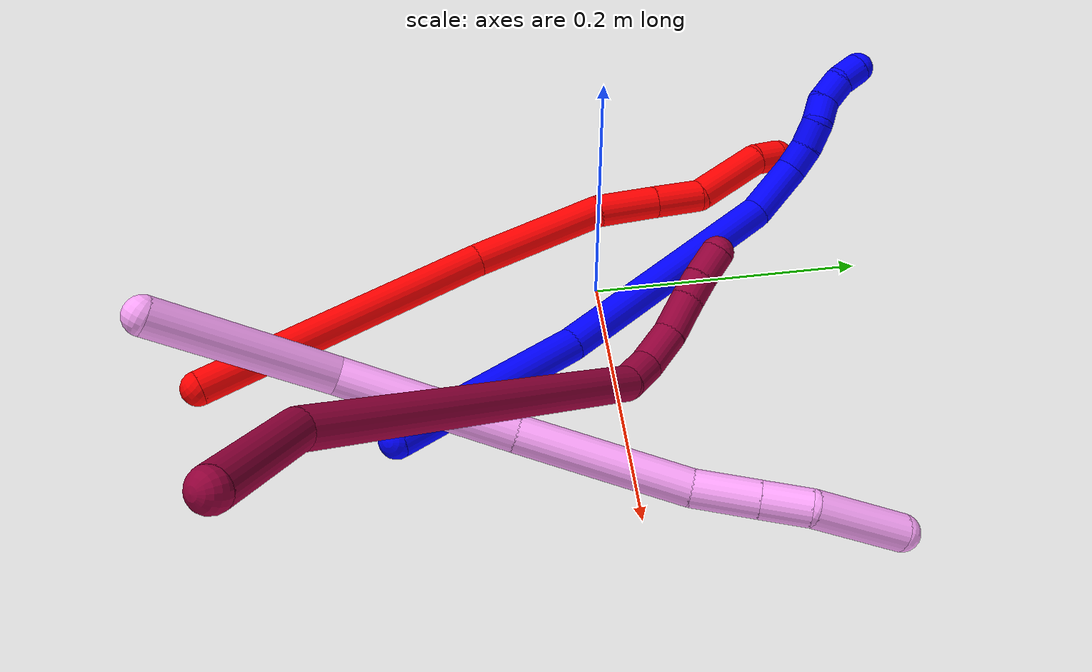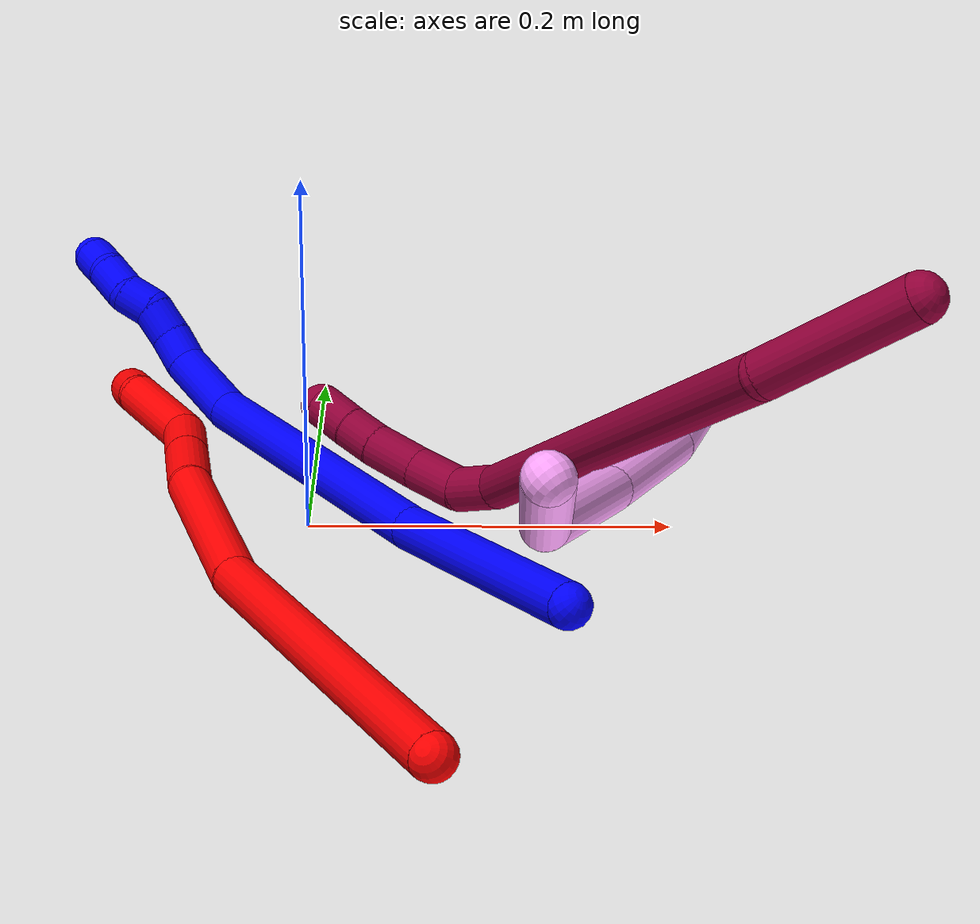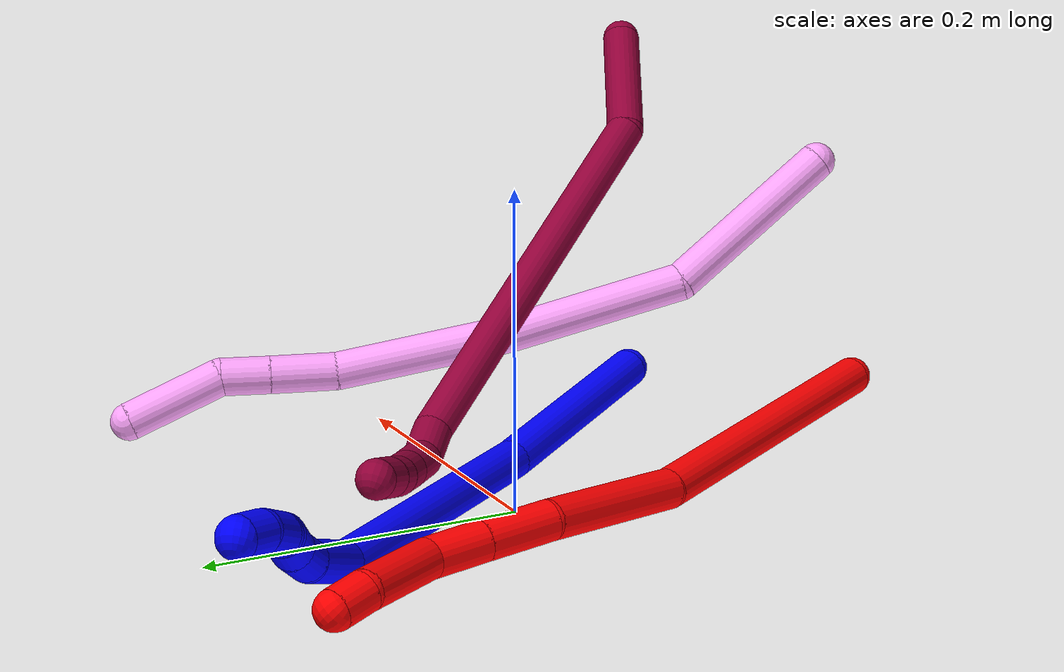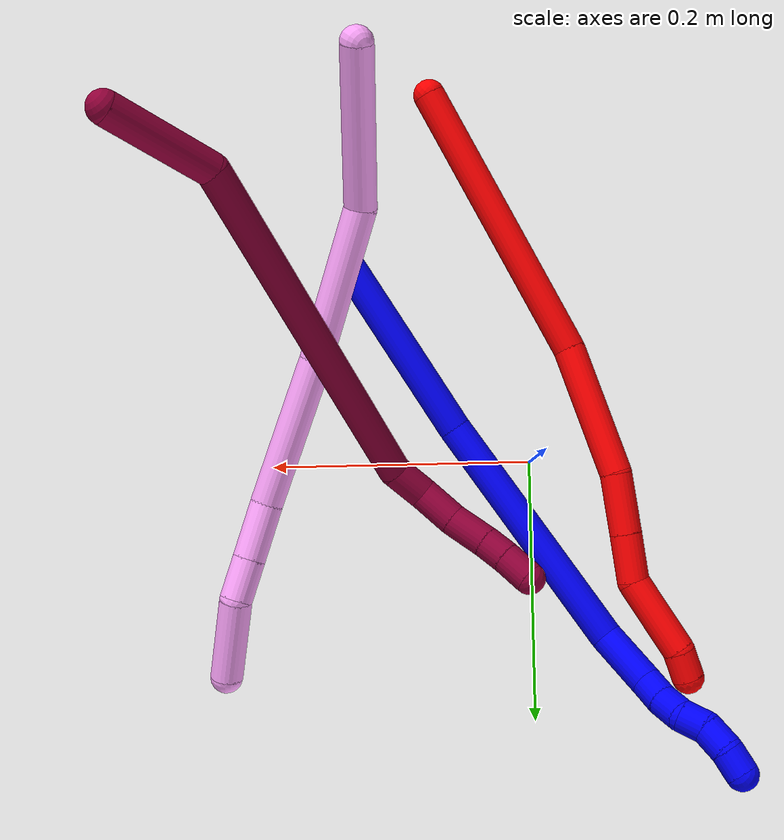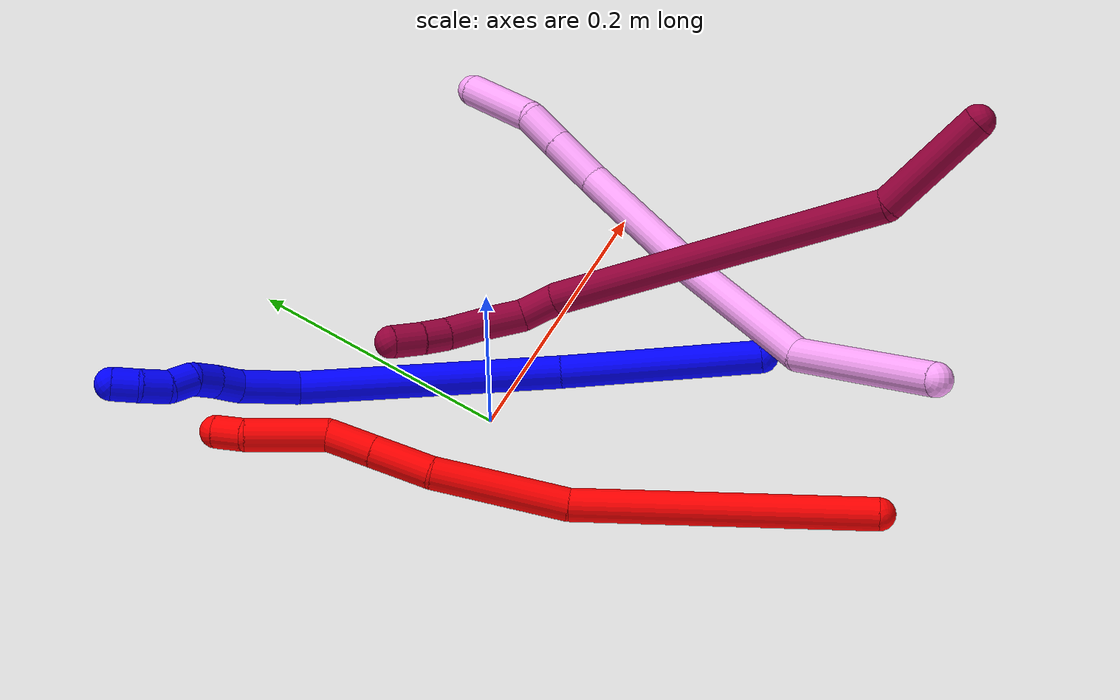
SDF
<sdf version="1.7">
 <world name="default">
  <model name="photoneo_s_sensor">
   <static>1</static>
   <pose>0 0 2 1.57079 1.57079 3.14159</pose>
   <link name="link">
    <inertial><mass>0.1</mass></inertial>
    <sensor name="sensor" type="depth">
     <update_rate>30</update_rate>
     <camera>
      <horizontal_fov>1.22</horizontal_fov>
      <image><width>1920</width><height>1200</height><format>B8G8R8</format></image>
      <clip><near>0.1</near><far>4</far></clip>
      <depth_camera><output>points</output></depth_camera>
     </camera>
     <plugin name="camera_plugin" filename="libgazebo_ros_depth_camera.so">
      <baseline>0.2</baseline>
      <alwaysOn>1</alwaysOn>
      <updateRate>0.0</updateRate>
      <cameraName>camera_ir</cameraName>
      <imageTopicName>/camera/color/image_raw</imageTopicName>
      <cameraInfoTopicName>/camera/color/camera_info</cameraInfoTopicName>
      <depthImageTopicName>/camera/depth/image_raw</depthImageTopicName>
      <depthImageCameraInfoTopicName>/camera/depth/camera_info</depthImageCameraInfoTopicName>
      <pointCloudTopicName>/camera/depth/points</pointCloudTopicName>
      <frameName>fr_optical</frameName>
      <pointCloudCutoff>0.1</pointCloudCutoff>
      <pointCloudCutoffMax>2.0</pointCloudCutoffMax>
      <distortionK1>0</distortionK1>
      <distortionK2>0</distortionK2>
      <distortionK3>0</distortionK3>
      <distortionT1>0</distortionT1>
      <distortionT2>0</distortionT2>
      <CxPrime>0</CxPrime>
      <Cx>0</Cx>
      <Cy>0</Cy>
      <focalLength>0</focalLength>
      <hackBaseline>0</hackBaseline>
     </plugin>
    </sensor>
   </link>
  </model>
  <model name="bin">
   <static>1</static>
   <link name="bottom">
    <collision name="collision-bottom">
     <pose>0 0 -0.01 0 -0 0</pose>
     <geometry><box><size>0.8 0.6 0.02</size></box></geometry>
     <surface>
      <friction><ode><mu>100</mu><mu2>100</mu2></ode></friction>
      <contact><collide_bitmask>65535</collide_bitmask></contact>
     </surface>
    </collision>
   </link>
   <link name="west_wall">
    <collision name="collision-west_wall">
     <pose>-0.41 0 0.1 0 -0 0</pose>
     <geometry><box><size>0.02 0.6 0.2</size></box></geometry>
     <surface>
      <friction><ode><mu>100</mu><mu2>100</mu2></ode></friction>
      <contact><collide_bitmask>65535</collide_bitmask></contact>
     </surface>
    </collision>
   </link>
   <link name="east_wall">
    <collision name="collision-east_wall">
     <pose>0.41 0 0.1 0 -0 0</pose>
     <geometry><box><size>0.02 0.6 0.2</size></box></geometry>
     <surface>
      <friction><ode><mu>100</mu><mu2>100</mu2></ode></friction>
      <contact><collide_bitmask>65535</collide_bitmask></contact>
     </surface>
    </collision>
   </link>
   <link name="south_wall">
    <collision name="collision-south_wall">
     <pose>0 -0.31 0.1 0 -0 0</pose>
     <geometry><box><size>0.8 0.02 0.2</size></box></geometry>
     <surface>
      <friction><ode><mu>100</mu><mu2>100</mu2></ode></friction>
      <contact><collide_bitmask>65535</collide_bitmask></contact>
     </surface>
    </collision>
   </link>
   <link name="north_wall">
    <collision name="collision-north_wall">
     <pose>0 0.31 0.1 0 -0 0</pose>
     <geometry><box><size>0.8 0.02 0.2</size></box></geometry>
     <surface>
      <friction><ode><mu>100</mu><mu2>100</mu2></ode></friction>
      <contact><collide_bitmask>65535</collide_bitmask></contact>
     </surface>
    </collision>
   </link>
  </model>
  <model name="1">
   <static>0</static>
   <link name="1">
    <collision name="collision-cylinder-e_1_1_4">
     <pose>-0.018305 0.046667 -0.056729 -2.4532 -0.244213 0.659672</pose>
     <geometry><cylinder><radius>0.0125</radius><length>0.151408</length></cylinder></geometry>
     <surface>
      <friction><ode><mu>1.16</mu><mu2>1.16</mu2><slip1>0</slip1><slip2>0</slip2></ode></friction>
      <contact><ode><kp>1e+06</kp><kd>1</kd><max_vel>0</max_vel><min_depth>0.001</min_depth></ode></contact>
     </surface>
    </collision>
    <visual name="visual-cylinder-e_1_1_4">
     <pose>-0.018305 0.046667 -0.056729 -2.4532 -0.244213 0.659672</pose>
     <geometry><cylinder><radius>0.0125</radius><length>0.151408</length></cylinder></geometry>
     <material><ambient>0 0 1 1</ambient></material>
    </visual>
    <collision name="collision-cylinder-e_2_4_5">
     <pose>-0.071039 0.157884 -0.180036 -2.37166 -0.35551 0.834674</pose>
     <geometry><cylinder><radius>0.0125</radius><length>0.197835</length></cylinder></geometry>
     <surface>
      <friction><ode><mu>1.16</mu><mu2>1.16</mu2><slip1>0</slip1><slip2>0</slip2></ode></friction>
      <contact><ode><kp>1e+06</kp><kd>1</kd><max_vel>0</max_vel><min_depth>0.001</min_depth></ode></contact>
     </surface>
    </collision>
    <visual name="visual-cylinder-e_2_4_5">
     <pose>-0.071039 0.157884 -0.180036 -2.37166 -0.35551 0.834674</pose>
     <geometry><cylinder><radius>0.0125</radius><length>0.197835</length></cylinder></geometry>
     <material><ambient>0 0 1 1</ambient></material>
    </visual>
    <collision name="collision-cylinder-e_3_5_6">
     <pose>-0.118831 0.239199 -0.255804 -2.07226 -0.609966 0.977188</pose>
     <geometry><cylinder><radius>0.0125</radius><length>0.046651</length></cylinder></geometry>
     <surface>
      <friction><ode><mu>1.16</mu><mu2>1.16</mu2><slip1>0</slip1><slip2>0</slip2></ode></friction>
      <contact><ode><kp>1e+06</kp><kd>1</kd><max_vel>0</max_vel><min_depth>0.001</min_depth></ode></contact>
     </surface>
    </collision>
    <visual name="visual-cylinder-e_3_5_6">
     <pose>-0.118831 0.239199 -0.255804 -2.07226 -0.609966 0.977188</pose>
     <geometry><cylinder><radius>0.0125</radius><length>0.046651</length></cylinder></geometry>
     <material><ambient>0 0 1 1</ambient></material>
    </visual>
    <collision name="collision-cylinder-e_4_6_7">
     <pose>-0.138747 0.26384 -0.266233 -1.72675 -0.688065 0.793581</pose>
     <geometry><cylinder><radius>0.0125</radius><length>0.020643</length></cylinder></geometry>
     <surface>
      <friction><ode><mu>1.16</mu><mu2>1.16</mu2><slip1>0</slip1><slip2>0</slip2></ode></friction>
      <contact><ode><kp>1e+06</kp><kd>1</kd><max_vel>0</max_vel><min_depth>0.001</min_depth></ode></contact>
     </surface>
    </collision>
    <visual name="visual-cylinder-e_4_6_7">
     <pose>-0.138747 0.26384 -0.266233 -1.72675 -0.688065 0.793581</pose>
     <geometry><cylinder><radius>0.0125</radius><length>0.020643</length></cylinder></geometry>
     <material><ambient>0 0 1 1</ambient></material>
    </visual>
    <collision name="collision-cylinder-e_5_7_8">
     <pose>-0.153283 0.278652 -0.267807 -1.61912 -0.854834 0.891884</pose>
     <geometry><cylinder><radius>0.0125</radius><length>0.021158</length></cylinder></geometry>
     <surface>
      <friction><ode><mu>1.16</mu><mu2>1.16</mu2><slip1>0</slip1><slip2>0</slip2></ode></friction>
      <contact><ode><kp>1e+06</kp><kd>1</kd><max_vel>0</max_vel><min_depth>0.001</min_depth></ode></contact>
     </surface>
    </collision>
    <visual name="visual-cylinder-e_5_7_8">
     <pose>-0.153283 0.278652 -0.267807 -1.61912 -0.854834 0.891884</pose>
     <geometry><cylinder><radius>0.0125</radius><length>0.021158</length></cylinder></geometry>
     <material><ambient>0 0 1 1</ambient></material>
    </visual>
    <collision name="collision-cylinder-e_6_8_9">
     <pose>-0.169573 0.289839 -0.271946 -2.30055 -0.969109 1.73316</pose>
     <geometry><cylinder><radius>0.0125</radius><length>0.020156</length></cylinder></geometry>
     <surface>
      <friction><ode><mu>1.16</mu><mu2>1.16</mu2><slip1>0</slip1><slip2>0</slip2></ode></friction>
      <contact><ode><kp>1e+06</kp><kd>1</kd><max_vel>0</max_vel><min_depth>0.001</min_depth></ode></contact>
     </surface>
    </collision>
    <visual name="visual-cylinder-e_6_8_9">
     <pose>-0.169573 0.289839 -0.271946 -2.30055 -0.969109 1.73316</pose>
     <geometry><cylinder><radius>0.0125</radius><length>0.020156</length></cylinder></geometry>
     <material><ambient>0 0 1 1</ambient></material>
    </visual>
    <collision name="collision-cylinder-e_7_9_10">
     <pose>-0.184426 0.302089 -0.279612 -2.02076 -0.635049 0.964873</pose>
     <geometry><cylinder><radius>0.0125</radius><length>0.022066</length></cylinder></geometry>
     <surface>
      <friction><ode><mu>1.16</mu><mu2>1.16</mu2><slip1>0</slip1><slip2>0</slip2></ode></friction>
      <contact><ode><kp>1e+06</kp><kd>1</kd><max_vel>0</max_vel><min_depth>0.001</min_depth></ode></contact>
     </surface>
    </collision>
    <visual name="visual-cylinder-e_7_9_10">
     <pose>-0.184426 0.302089 -0.279612 -2.02076 -0.635049 0.964873</pose>
     <geometry><cylinder><radius>0.0125</radius><length>0.022066</length></cylinder></geometry>
     <material><ambient>0 0 1 1</ambient></material>
    </visual>
    <collision name="collision-cylinder-e_8_10_2">
     <pose>-0.194677 0.317673 -0.28891 -2.19249 -0.378011 0.712924</pose>
     <geometry><cylinder><radius>0.0125</radius><length>0.020084</length></cylinder></geometry>
     <surface>
      <friction><ode><mu>1.16</mu><mu2>1.16</mu2><slip1>0</slip1><slip2>0</slip2></ode></friction>
      <contact><ode><kp>1e+06</kp><kd>1</kd><max_vel>0</max_vel><min_depth>0.001</min_depth></ode></contact>
     </surface>
    </collision>
    <visual name="visual-cylinder-e_8_10_2">
     <pose>-0.194677 0.317673 -0.28891 -2.19249 -0.378011 0.712924</pose>
     <geometry><cylinder><radius>0.0125</radius><length>0.020084</length></cylinder></geometry>
     <material><ambient>0 0 1 1</ambient></material>
    </visual>
    <collision name="collision-sphere-2">
     <pose>-0.198383 0.32526 -0.294346 0 -0 0</pose>
     <geometry><sphere><radius>0.0125</radius></sphere></geometry>
     <surface>
      <friction><ode><mu>1.16</mu><mu2>1.16</mu2><slip1>0</slip1><slip2>0</slip2></ode></friction>
      <contact><ode><kp>1e+06</kp><kd>1</kd><max_vel>0</max_vel><min_depth>0.001</min_depth></ode></contact>
     </surface>
    </collision>
    <visual name="visual-sphere-2">
     <pose>-0.198383 0.32526 -0.294346 0 -0 0</pose>
     <geometry><sphere><radius>0.0125</radius></sphere></geometry>
     <material><ambient>0 0 1 1</ambient></material>
    </visual>
    <collision name="collision-sphere-10">
     <pose>-0.190971 0.310087 -0.283475 0 -0 0</pose>
     <geometry><sphere><radius>0.0125</radius></sphere></geometry>
     <surface>
      <friction><ode><mu>1.16</mu><mu2>1.16</mu2><slip1>0</slip1><slip2>0</slip2></ode></friction>
      <contact><ode><kp>1e+06</kp><kd>1</kd><max_vel>0</max_vel><min_depth>0.001</min_depth></ode></contact>
     </surface>
    </collision>
    <visual name="visual-sphere-10">
     <pose>-0.190971 0.310087 -0.283475 0 -0 0</pose>
     <geometry><sphere><radius>0.0125</radius></sphere></geometry>
     <material><ambient>0 0 1 1</ambient></material>
    </visual>
    <collision name="collision-sphere-9">
     <pose>-0.177881 0.294091 -0.275749 0 -0 0</pose>
     <geometry><sphere><radius>0.0125</radius></sphere></geometry>
     <surface>
      <friction><ode><mu>1.16</mu><mu2>1.16</mu2><slip1>0</slip1><slip2>0</slip2></ode></friction>
      <contact><ode><kp>1e+06</kp><kd>1</kd><max_vel>0</max_vel><min_depth>0.001</min_depth></ode></contact>
     </surface>
    </collision>
    <visual name="visual-sphere-9">
     <pose>-0.177881 0.294091 -0.275749 0 -0 0</pose>
     <geometry><sphere><radius>0.0125</radius></sphere></geometry>
     <material><ambient>0 0 1 1</ambient></material>
    </visual>
    <collision name="collision-sphere-4">
     <pose>-0.036609 0.093334 -0.113458 0 -0 0</pose>
     <geometry><sphere><radius>0.0125</radius></sphere></geometry>
     <surface>
      <friction><ode><mu>1.16</mu><mu2>1.16</mu2><slip1>0</slip1><slip2>0</slip2></ode></friction>
      <contact><ode><kp>1e+06</kp><kd>1</kd><max_vel>0</max_vel><min_depth>0.001</min_depth></ode></contact>
     </surface>
    </collision>
    <visual name="visual-sphere-4">
     <pose>-0.036609 0.093334 -0.113458 0 -0 0</pose>
     <geometry><sphere><radius>0.0125</radius></sphere></geometry>
     <material><ambient>0 0 1 1</ambient></material>
    </visual>
    <collision name="collision-sphere-1">
     <geometry><sphere><radius>0.0125</radius></sphere></geometry>
     <surface>
      <friction><ode><mu>1.16</mu><mu2>1.16</mu2><slip1>0</slip1><slip2>0</slip2></ode></friction>
      <contact><ode><kp>1e+06</kp><kd>1</kd><max_vel>0</max_vel><min_depth>0.001</min_depth></ode></contact>
     </surface>
    </collision>
    <visual name="visual-sphere-1">
     <geometry><sphere><radius>0.0125</radius></sphere></geometry>
     <material><ambient>0 0 1 1</ambient></material>
    </visual>
    <collision name="collision-sphere-8">
     <pose>-0.161265 0.285587 -0.268143 0 -0 0</pose>
     <geometry><sphere><radius>0.0125</radius></sphere></geometry>
     <surface>
      <friction><ode><mu>1.16</mu><mu2>1.16</mu2><slip1>0</slip1><slip2>0</slip2></ode></friction>
      <contact><ode><kp>1e+06</kp><kd>1</kd><max_vel>0</max_vel><min_depth>0.001</min_depth></ode></contact>
     </surface>
    </collision>
    <visual name="visual-sphere-8">
     <pose>-0.161265 0.285587 -0.268143 0 -0 0</pose>
     <geometry><sphere><radius>0.0125</radius></sphere></geometry>
     <material><ambient>0 0 1 1</ambient></material>
    </visual>
    <collision name="collision-sphere-5">
     <pose>-0.105469 0.222434 -0.246614 0 -0 0</pose>
     <geometry><sphere><radius>0.0125</radius></sphere></geometry>
     <surface>
      <friction><ode><mu>1.16</mu><mu2>1.16</mu2><slip1>0</slip1><slip2>0</slip2></ode></friction>
      <contact><ode><kp>1e+06</kp><kd>1</kd><max_vel>0</max_vel><min_depth>0.001</min_depth></ode></contact>
     </surface>
    </collision>
    <visual name="visual-sphere-5">
     <pose>-0.105469 0.222434 -0.246614 0 -0 0</pose>
     <geometry><sphere><radius>0.0125</radius></sphere></geometry>
     <material><ambient>0 0 1 1</ambient></material>
    </visual>
    <collision name="collision-sphere-6">
     <pose>-0.132193 0.255964 -0.264995 0 -0 0</pose>
     <geometry><sphere><radius>0.0125</radius></sphere></geometry>
     <surface>
      <friction><ode><mu>1.16</mu><mu2>1.16</mu2><slip1>0</slip1><slip2>0</slip2></ode></friction>
      <contact><ode><kp>1e+06</kp><kd>1</kd><max_vel>0</max_vel><min_depth>0.001</min_depth></ode></contact>
     </surface>
    </collision>
    <visual name="visual-sphere-6">
     <pose>-0.132193 0.255964 -0.264995 0 -0 0</pose>
     <geometry><sphere><radius>0.0125</radius></sphere></geometry>
     <material><ambient>0 0 1 1</ambient></material>
    </visual>
    <collision name="collision-sphere-7">
     <pose>-0.145302 0.271716 -0.267472 0 -0 0</pose>
     <geometry><sphere><radius>0.0125</radius></sphere></geometry>
     <surface>
      <friction><ode><mu>1.16</mu><mu2>1.16</mu2><slip1>0</slip1><slip2>0</slip2></ode></friction>
      <contact><ode><kp>1e+06</kp><kd>1</kd><max_vel>0</max_vel><min_depth>0.001</min_depth></ode></contact>
     </surface>
    </collision>
    <visual name="visual-sphere-7">
     <pose>-0.145302 0.271716 -0.267472 0 -0 0</pose>
     <geometry><sphere><radius>0.0125</radius></sphere></geometry>
     <material><ambient>0 0 1 1</ambient></material>
    </visual>
    <inertial>
     <pose>-0.079747 0.159379 -0.169512 0 -0 0</pose>
     <mass>0.5</mass>
     <inertia>
      <ixx>0.00127</ixx>
      <ixy>0</ixy>
      <ixz>0</ixz>
      <iyy>0.00032</iyy>
      <iyz>0</iyz>
      <izz>-0.000334</izz>
     </inertia>
    </inertial>
   </link>
   <pose>0.137856 -0.154177 0.03082 0.561752 0.567998 0.182253</pose>
  </model>
  <model name="2">
   <static>0</static>
   <link name="2">
    <collision name="collision-cylinder-e_1_1_4">
     <pose>-0.050214 0.088475 -0.049893 -2.08426 -0.45913 0.761117</pose>
     <geometry><cylinder><radius>0.0125</radius><length>0.226615</length></cylinder></geometry>
     <surface>
      <friction><ode><mu>1.16</mu><mu2>1.16</mu2><slip1>0</slip1><slip2>0</slip2></ode></friction>
      <contact><ode><kp>1e+06</kp><kd>1</kd><max_vel>0</max_vel><min_depth>0.001</min_depth></ode></contact>
     </surface>
    </collision>
    <visual name="visual-cylinder-e_1_1_4">
     <pose>-0.050214 0.088475 -0.049893 -2.08426 -0.45913 0.761117</pose>
     <geometry><cylinder><radius>0.0125</radius><length>0.226615</length></cylinder></geometry>
     <material><ambient>1 0 0 1</ambient></material>
    </visual>
    <collision name="collision-cylinder-e_2_4_5">
     <pose>-0.113602 0.221537 -0.122796 -2.04722 -0.256749 0.41758</pose>
     <geometry><cylinder><radius>0.0125</radius><length>0.103749</length></cylinder></geometry>
     <surface>
      <friction><ode><mu>1.16</mu><mu2>1.16</mu2><slip1>0</slip1><slip2>0</slip2></ode></friction>
      <contact><ode><kp>1e+06</kp><kd>1</kd><max_vel>0</max_vel><min_depth>0.001</min_depth></ode></contact>
     </surface>
    </collision>
    <visual name="visual-cylinder-e_2_4_5">
     <pose>-0.113602 0.221537 -0.122796 -2.04722 -0.256749 0.41758</pose>
     <geometry><cylinder><radius>0.0125</radius><length>0.103749</length></cylinder></geometry>
     <material><ambient>1 0 0 1</ambient></material>
    </visual>
    <collision name="collision-cylinder-e_3_5_6">
     <pose>-0.130388 0.284228 -0.160364 -2.24803 -0.154285 0.319919</pose>
     <geometry><cylinder><radius>0.0125</radius><length>0.047022</length></cylinder></geometry>
     <surface>
      <friction><ode><mu>1.16</mu><mu2>1.16</mu2><slip1>0</slip1><slip2>0</slip2></ode></friction>
      <contact><ode><kp>1e+06</kp><kd>1</kd><max_vel>0</max_vel><min_depth>0.001</min_depth></ode></contact>
     </surface>
    </collision>
    <visual name="visual-cylinder-e_3_5_6">
     <pose>-0.130388 0.284228 -0.160364 -2.24803 -0.154285 0.319919</pose>
     <geometry><cylinder><radius>0.0125</radius><length>0.047022</length></cylinder></geometry>
     <material><ambient>1 0 0 1</ambient></material>
    </visual>
    <collision name="collision-cylinder-e_4_6_7">
     <pose>-0.13685 0.316576 -0.186668 -2.26044 -0.153138 0.322606</pose>
     <geometry><cylinder><radius>0.0125</radius><length>0.037361</length></cylinder></geometry>
     <surface>
      <friction><ode><mu>1.16</mu><mu2>1.16</mu2><slip1>0</slip1><slip2>0</slip2></ode></friction>
      <contact><ode><kp>1e+06</kp><kd>1</kd><max_vel>0</max_vel><min_depth>0.001</min_depth></ode></contact>
     </surface>
    </collision>
    <visual name="visual-cylinder-e_4_6_7">
     <pose>-0.13685 0.316576 -0.186668 -2.26044 -0.153138 0.322606</pose>
     <geometry><cylinder><radius>0.0125</radius><length>0.037361</length></cylinder></geometry>
     <material><ambient>1 0 0 1</ambient></material>
    </visual>
    <collision name="collision-cylinder-e_5_7_8">
     <pose>-0.15405 0.356534 -0.20882 -1.95529 -0.477394 0.692819</pose>
     <geometry><cylinder><radius>0.0125</radius><length>0.062466</length></cylinder></geometry>
     <surface>
      <friction><ode><mu>1.16</mu><mu2>1.16</mu2><slip1>0</slip1><slip2>0</slip2></ode></friction>
      <contact><ode><kp>1e+06</kp><kd>1</kd><max_vel>0</max_vel><min_depth>0.001</min_depth></ode></contact>
     </surface>
    </collision>
    <visual name="visual-cylinder-e_5_7_8">
     <pose>-0.15405 0.356534 -0.20882 -1.95529 -0.477394 0.692819</pose>
     <geometry><cylinder><radius>0.0125</radius><length>0.062466</length></cylinder></geometry>
     <material><ambient>1 0 0 1</ambient></material>
    </visual>
    <collision name="collision-cylinder-e_6_8_2">
     <pose>-0.172651 0.390107 -0.226298 -2.30367 -0.382337 0.819918</pose>
     <geometry><cylinder><radius>0.0125</radius><length>0.022786</length></cylinder></geometry>
     <surface>
      <friction><ode><mu>1.16</mu><mu2>1.16</mu2><slip1>0</slip1><slip2>0</slip2></ode></friction>
      <contact><ode><kp>1e+06</kp><kd>1</kd><max_vel>0</max_vel><min_depth>0.001</min_depth></ode></contact>
     </surface>
    </collision>
    <visual name="visual-cylinder-e_6_8_2">
     <pose>-0.172651 0.390107 -0.226298 -2.30367 -0.382337 0.819918</pose>
     <geometry><cylinder><radius>0.0125</radius><length>0.022786</length></cylinder></geometry>
     <material><ambient>1 0 0 1</ambient></material>
    </visual>
    <collision name="collision-sphere-2">
     <pose>-0.176902 0.397963 -0.233369 0 -0 0</pose>
     <geometry><sphere><radius>0.0125</radius></sphere></geometry>
     <surface>
      <friction><ode><mu>1.16</mu><mu2>1.16</mu2><slip1>0</slip1><slip2>0</slip2></ode></friction>
      <contact><ode><kp>1e+06</kp><kd>1</kd><max_vel>0</max_vel><min_depth>0.001</min_depth></ode></contact>
     </surface>
    </collision>
    <visual name="visual-sphere-2">
     <pose>-0.176902 0.397963 -0.233369 0 -0 0</pose>
     <geometry><sphere><radius>0.0125</radius></sphere></geometry>
     <material><ambient>1 0 0 1</ambient></material>
    </visual>
    <collision name="collision-sphere-4">
     <pose>-0.100429 0.17695 -0.099786 0 -0 0</pose>
     <geometry><sphere><radius>0.0125</radius></sphere></geometry>
     <surface>
      <friction><ode><mu>1.16</mu><mu2>1.16</mu2><slip1>0</slip1><slip2>0</slip2></ode></friction>
      <contact><ode><kp>1e+06</kp><kd>1</kd><max_vel>0</max_vel><min_depth>0.001</min_depth></ode></contact>
     </surface>
    </collision>
    <visual name="visual-sphere-4">
     <pose>-0.100429 0.17695 -0.099786 0 -0 0</pose>
     <geometry><sphere><radius>0.0125</radius></sphere></geometry>
     <material><ambient>1 0 0 1</ambient></material>
    </visual>
    <collision name="collision-sphere-1">
     <geometry><sphere><radius>0.0125</radius></sphere></geometry>
     <surface>
      <friction><ode><mu>1.16</mu><mu2>1.16</mu2><slip1>0</slip1><slip2>0</slip2></ode></friction>
      <contact><ode><kp>1e+06</kp><kd>1</kd><max_vel>0</max_vel><min_depth>0.001</min_depth></ode></contact>
     </surface>
    </collision>
    <visual name="visual-sphere-1">
     <geometry><sphere><radius>0.0125</radius></sphere></geometry>
     <material><ambient>1 0 0 1</ambient></material>
    </visual>
    <collision name="collision-sphere-8">
     <pose>-0.168401 0.38225 -0.219226 0 -0 0</pose>
     <geometry><sphere><radius>0.0125</radius></sphere></geometry>
     <surface>
      <friction><ode><mu>1.16</mu><mu2>1.16</mu2><slip1>0</slip1><slip2>0</slip2></ode></friction>
      <contact><ode><kp>1e+06</kp><kd>1</kd><max_vel>0</max_vel><min_depth>0.001</min_depth></ode></contact>
     </surface>
    </collision>
    <visual name="visual-sphere-8">
     <pose>-0.168401 0.38225 -0.219226 0 -0 0</pose>
     <geometry><sphere><radius>0.0125</radius></sphere></geometry>
     <material><ambient>1 0 0 1</ambient></material>
    </visual>
    <collision name="collision-sphere-5">
     <pose>-0.126774 0.266123 -0.145806 0 -0 0</pose>
     <geometry><sphere><radius>0.0125</radius></sphere></geometry>
     <surface>
      <friction><ode><mu>1.16</mu><mu2>1.16</mu2><slip1>0</slip1><slip2>0</slip2></ode></friction>
      <contact><ode><kp>1e+06</kp><kd>1</kd><max_vel>0</max_vel><min_depth>0.001</min_depth></ode></contact>
     </surface>
    </collision>
    <visual name="visual-sphere-5">
     <pose>-0.126774 0.266123 -0.145806 0 -0 0</pose>
     <geometry><sphere><radius>0.0125</radius></sphere></geometry>
     <material><ambient>1 0 0 1</ambient></material>
    </visual>
    <collision name="collision-sphere-6">
     <pose>-0.134001 0.302333 -0.174922 0 -0 0</pose>
     <geometry><sphere><radius>0.0125</radius></sphere></geometry>
     <surface>
      <friction><ode><mu>1.16</mu><mu2>1.16</mu2><slip1>0</slip1><slip2>0</slip2></ode></friction>
      <contact><ode><kp>1e+06</kp><kd>1</kd><max_vel>0</max_vel><min_depth>0.001</min_depth></ode></contact>
     </surface>
    </collision>
    <visual name="visual-sphere-6">
     <pose>-0.134001 0.302333 -0.174922 0 -0 0</pose>
     <geometry><sphere><radius>0.0125</radius></sphere></geometry>
     <material><ambient>1 0 0 1</ambient></material>
    </visual>
    <collision name="collision-sphere-7">
     <pose>-0.1397 0.330819 -0.198415 0 -0 0</pose>
     <geometry><sphere><radius>0.0125</radius></sphere></geometry>
     <surface>
      <friction><ode><mu>1.16</mu><mu2>1.16</mu2><slip1>0</slip1><slip2>0</slip2></ode></friction>
      <contact><ode><kp>1e+06</kp><kd>1</kd><max_vel>0</max_vel><min_depth>0.001</min_depth></ode></contact>
     </surface>
    </collision>
    <visual name="visual-sphere-7">
     <pose>-0.1397 0.330819 -0.198415 0 -0 0</pose>
     <geometry><sphere><radius>0.0125</radius></sphere></geometry>
     <material><ambient>1 0 0 1</ambient></material>
    </visual>
    <inertial>
     <pose>-0.095933 0.198774 -0.113524 0 -0 0</pose>
     <mass>0.5</mass>
     <inertia>
      <ixx>0.001402</ixx>
      <ixy>0</ixy>
      <ixz>0</ixz>
      <iyy>0.000564</iyy>
      <iyz>0</iyz>
      <izz>-0.000426</izz>
     </inertia>
    </inertial>
   </link>
   <pose>0.072447 -0.287838 0.024132 0.692672 -0.464698 -0.003874</pose>
  </model>
  <model name="4">
   <static>0</static>
   <link name="4">
    <collision name="collision-cylinder-e_1_1_4">
     <pose>0.040761 0.046258 -0.007584 -1.73329 0.71575 -0.829485</pose>
     <geometry><cylinder><radius>0.0125</radius><length>0.124238</length></cylinder></geometry>
     <surface>
      <friction><ode><mu>1.16</mu><mu2>1.16</mu2><slip1>0</slip1><slip2>0</slip2></ode></friction>
      <contact><ode><kp>1e+06</kp><kd>1</kd><max_vel>0</max_vel><min_depth>0.001</min_depth></ode></contact>
     </surface>
    </collision>
    <visual name="visual-cylinder-e_1_1_4">
     <pose>0.040761 0.046258 -0.007584 -1.73329 0.71575 -0.829485</pose>
     <geometry><cylinder><radius>0.0125</radius><length>0.124238</length></cylinder></geometry>
     <material><ambient>1 0.65098 0.996078 1</ambient></material>
    </visual>
    <collision name="collision-cylinder-e_2_4_5">
     <pose>0.097759 0.148621 -0.026208 -1.7651 0.276652 -0.335381</pose>
     <geometry><cylinder><radius>0.0125</radius><length>0.118885</length></cylinder></geometry>
     <surface>
      <friction><ode><mu>1.16</mu><mu2>1.16</mu2><slip1>0</slip1><slip2>0</slip2></ode></friction>
      <contact><ode><kp>1e+06</kp><kd>1</kd><max_vel>0</max_vel><min_depth>0.001</min_depth></ode></contact>
     </surface>
    </collision>
    <visual name="visual-cylinder-e_2_4_5">
     <pose>0.097759 0.148621 -0.026208 -1.7651 0.276652 -0.335381</pose>
     <geometry><cylinder><radius>0.0125</radius><length>0.118885</length></cylinder></geometry>
     <material><ambient>1 0.65098 0.996078 1</ambient></material>
    </visual>
    <collision name="collision-cylinder-e_3_5_6">
     <pose>0.125207 0.260137 -0.049131 -1.78203 0.195333 -0.241254</pose>
     <geometry><cylinder><radius>0.0125</radius><length>0.115534</length></cylinder></geometry>
     <surface>
      <friction><ode><mu>1.16</mu><mu2>1.16</mu2><slip1>0</slip1><slip2>0</slip2></ode></friction>
      <contact><ode><kp>1e+06</kp><kd>1</kd><max_vel>0</max_vel><min_depth>0.001</min_depth></ode></contact>
     </surface>
    </collision>
    <visual name="visual-cylinder-e_3_5_6">
     <pose>0.125207 0.260137 -0.049131 -1.78203 0.195333 -0.241254</pose>
     <geometry><cylinder><radius>0.0125</radius><length>0.115534</length></cylinder></geometry>
     <material><ambient>1 0.65098 0.996078 1</ambient></material>
    </visual>
    <collision name="collision-cylinder-e_4_6_7">
     <pose>0.138137 0.335967 -0.068581 -1.92572 0.078718 -0.113062</pose>
     <geometry><cylinder><radius>0.0125</radius><length>0.043692</length></cylinder></geometry>
     <surface>
      <friction><ode><mu>1.16</mu><mu2>1.16</mu2><slip1>0</slip1><slip2>0</slip2></ode></friction>
      <contact><ode><kp>1e+06</kp><kd>1</kd><max_vel>0</max_vel><min_depth>0.001</min_depth></ode></contact>
     </surface>
    </collision>
    <visual name="visual-cylinder-e_4_6_7">
     <pose>0.138137 0.335967 -0.068581 -1.92572 0.078718 -0.113062</pose>
     <geometry><cylinder><radius>0.0125</radius><length>0.043692</length></cylinder></geometry>
     <material><ambient>1 0.65098 0.996078 1</ambient></material>
    </visual>
    <collision name="collision-cylinder-e_5_7_8">
     <pose>0.140957 0.371517 -0.081838 -1.93043 0.068076 -0.098283</pose>
     <geometry><cylinder><radius>0.0125</radius><length>0.032402</length></cylinder></geometry>
     <surface>
      <friction><ode><mu>1.16</mu><mu2>1.16</mu2><slip1>0</slip1><slip2>0</slip2></ode></friction>
      <contact><ode><kp>1e+06</kp><kd>1</kd><max_vel>0</max_vel><min_depth>0.001</min_depth></ode></contact>
     </surface>
    </collision>
    <visual name="visual-cylinder-e_5_7_8">
     <pose>0.140957 0.371517 -0.081838 -1.93043 0.068076 -0.098283</pose>
     <geometry><cylinder><radius>0.0125</radius><length>0.032402</length></cylinder></geometry>
     <material><ambient>1 0.65098 0.996078 1</ambient></material>
    </visual>
    <collision name="collision-cylinder-e_6_8_2">
     <pose>0.156572 0.41511 -0.094124 -1.79857 0.461023 -0.574287</pose>
     <geometry><cylinder><radius>0.0125</radius><length>0.065248</length></cylinder></geometry>
     <surface>
      <friction><ode><mu>1.16</mu><mu2>1.16</mu2><slip1>0</slip1><slip2>0</slip2></ode></friction>
      <contact><ode><kp>1e+06</kp><kd>1</kd><max_vel>0</max_vel><min_depth>0.001</min_depth></ode></contact>
     </surface>
    </collision>
    <visual name="visual-cylinder-e_6_8_2">
     <pose>0.156572 0.41511 -0.094124 -1.79857 0.461023 -0.574287</pose>
     <geometry><cylinder><radius>0.0125</radius><length>0.065248</length></cylinder></geometry>
     <material><ambient>1 0.65098 0.996078 1</ambient></material>
    </visual>
    <collision name="collision-sphere-2">
     <pose>0.171086 0.443574 -0.100722 0 -0 0</pose>
     <geometry><sphere><radius>0.0125</radius></sphere></geometry>
     <surface>
      <friction><ode><mu>1.16</mu><mu2>1.16</mu2><slip1>0</slip1><slip2>0</slip2></ode></friction>
      <contact><ode><kp>1e+06</kp><kd>1</kd><max_vel>0</max_vel><min_depth>0.001</min_depth></ode></contact>
     </surface>
    </collision>
    <visual name="visual-sphere-2">
     <pose>0.171086 0.443574 -0.100722 0 -0 0</pose>
     <geometry><sphere><radius>0.0125</radius></sphere></geometry>
     <material><ambient>1 0.65098 0.996078 1</ambient></material>
    </visual>
    <collision name="collision-sphere-4">
     <pose>0.081523 0.092515 -0.015167 0 -0 0</pose>
     <geometry><sphere><radius>0.0125</radius></sphere></geometry>
     <surface>
      <friction><ode><mu>1.16</mu><mu2>1.16</mu2><slip1>0</slip1><slip2>0</slip2></ode></friction>
      <contact><ode><kp>1e+06</kp><kd>1</kd><max_vel>0</max_vel><min_depth>0.001</min_depth></ode></contact>
     </surface>
    </collision>
    <visual name="visual-sphere-4">
     <pose>0.081523 0.092515 -0.015167 0 -0 0</pose>
     <geometry><sphere><radius>0.0125</radius></sphere></geometry>
     <material><ambient>1 0.65098 0.996078 1</ambient></material>
    </visual>
    <collision name="collision-sphere-1">
     <geometry><sphere><radius>0.0125</radius></sphere></geometry>
     <surface>
      <friction><ode><mu>1.16</mu><mu2>1.16</mu2><slip1>0</slip1><slip2>0</slip2></ode></friction>
      <contact><ode><kp>1e+06</kp><kd>1</kd><max_vel>0</max_vel><min_depth>0.001</min_depth></ode></contact>
     </surface>
    </collision>
    <visual name="visual-sphere-1">
     <geometry><sphere><radius>0.0125</radius></sphere></geometry>
     <material><ambient>1 0.65098 0.996078 1</ambient></material>
    </visual>
    <collision name="collision-sphere-8">
     <pose>0.142059 0.386647 -0.087526 0 -0 0</pose>
     <geometry><sphere><radius>0.0125</radius></sphere></geometry>
     <surface>
      <friction><ode><mu>1.16</mu><mu2>1.16</mu2><slip1>0</slip1><slip2>0</slip2></ode></friction>
      <contact><ode><kp>1e+06</kp><kd>1</kd><max_vel>0</max_vel><min_depth>0.001</min_depth></ode></contact>
     </surface>
    </collision>
    <visual name="visual-sphere-8">
     <pose>0.142059 0.386647 -0.087526 0 -0 0</pose>
     <geometry><sphere><radius>0.0125</radius></sphere></geometry>
     <material><ambient>1 0.65098 0.996078 1</ambient></material>
    </visual>
    <collision name="collision-sphere-5">
     <pose>0.113995 0.204728 -0.037249 0 -0 0</pose>
     <geometry><sphere><radius>0.0125</radius></sphere></geometry>
     <surface>
      <friction><ode><mu>1.16</mu><mu2>1.16</mu2><slip1>0</slip1><slip2>0</slip2></ode></friction>
      <contact><ode><kp>1e+06</kp><kd>1</kd><max_vel>0</max_vel><min_depth>0.001</min_depth></ode></contact>
     </surface>
    </collision>
    <visual name="visual-sphere-5">
     <pose>0.113995 0.204728 -0.037249 0 -0 0</pose>
     <geometry><sphere><radius>0.0125</radius></sphere></geometry>
     <material><ambient>1 0.65098 0.996078 1</ambient></material>
    </visual>
    <collision name="collision-sphere-6">
     <pose>0.136419 0.315546 -0.061012 0 -0 0</pose>
     <geometry><sphere><radius>0.0125</radius></sphere></geometry>
     <surface>
      <friction><ode><mu>1.16</mu><mu2>1.16</mu2><slip1>0</slip1><slip2>0</slip2></ode></friction>
      <contact><ode><kp>1e+06</kp><kd>1</kd><max_vel>0</max_vel><min_depth>0.001</min_depth></ode></contact>
     </surface>
    </collision>
    <visual name="visual-sphere-6">
     <pose>0.136419 0.315546 -0.061012 0 -0 0</pose>
     <geometry><sphere><radius>0.0125</radius></sphere></geometry>
     <material><ambient>1 0.65098 0.996078 1</ambient></material>
    </visual>
    <collision name="collision-sphere-7">
     <pose>0.139855 0.356388 -0.076149 0 -0 0</pose>
     <geometry><sphere><radius>0.0125</radius></sphere></geometry>
     <surface>
      <friction><ode><mu>1.16</mu><mu2>1.16</mu2><slip1>0</slip1><slip2>0</slip2></ode></friction>
      <contact><ode><kp>1e+06</kp><kd>1</kd><max_vel>0</max_vel><min_depth>0.001</min_depth></ode></contact>
     </surface>
    </collision>
    <visual name="visual-sphere-7">
     <pose>0.139855 0.356388 -0.076149 0 -0 0</pose>
     <geometry><sphere><radius>0.0125</radius></sphere></geometry>
     <material><ambient>1 0.65098 0.996078 1</ambient></material>
    </visual>
    <inertial>
     <pose>0.103942 0.214546 -0.043047 0 -0 0</pose>
     <mass>0.5</mass>
     <inertia>
      <ixx>0.000205</ixx>
      <ixy>0</ixy>
      <ixz>0</ixz>
      <iyy>-0.000125</iyy>
      <iyz>0</iyz>
      <izz>-0.000615</izz>
     </inertia>
    </inertial>
   </link>
   <pose>0.122053 -0.287532 0.160862 -2.87327 0.92971 2.70392</pose>
  </model>
  <model name="8">
   <static>0</static>
   <link name="8">
    <collision name="collision-cylinder-e_1_1_4">
     <pose>-0.011684 -0.004505 -0.041524 3.03352 -0.27277 -2.39073</pose>
     <geometry><cylinder><radius>0.0125</radius><length>0.086742</length></cylinder></geometry>
     <surface>
      <friction><ode><mu>1.16</mu><mu2>1.16</mu2><slip1>0</slip1><slip2>0</slip2></ode></friction>
      <contact><ode><kp>1e+06</kp><kd>1</kd><max_vel>0</max_vel><min_depth>0.001</min_depth></ode></contact>
     </surface>
    </collision>
    <visual name="visual-cylinder-e_1_1_4">
     <pose>-0.011684 -0.004505 -0.041524 3.03352 -0.27277 -2.39073</pose>
     <geometry><cylinder><radius>0.0125</radius><length>0.086742</length></cylinder></geometry>
     <material><ambient>0.584314 0 0.227451 1</ambient></material>
    </visual>
    <collision name="collision-cylinder-e_2_4_5">
     <pose>-0.004029 0.012369 -0.218662 -2.98523 0.139946 -1.45972</pose>
     <geometry><cylinder><radius>0.0125</radius><length>0.277289</length></cylinder></geometry>
     <surface>
      <friction><ode><mu>1.16</mu><mu2>1.16</mu2><slip1>0</slip1><slip2>0</slip2></ode></friction>
      <contact><ode><kp>1e+06</kp><kd>1</kd><max_vel>0</max_vel><min_depth>0.001</min_depth></ode></contact>
     </surface>
    </collision>
    <visual name="visual-cylinder-e_2_4_5">
     <pose>-0.004029 0.012369 -0.218662 -2.98523 0.139946 -1.45972</pose>
     <geometry><cylinder><radius>0.0125</radius><length>0.277289</length></cylinder></geometry>
     <material><ambient>0.584314 0 0.227451 1</ambient></material>
    </visual>
    <collision name="collision-cylinder-e_3_5_6">
     <pose>0.011872 0.036965 -0.36789 -2.9095 -0.241009 1.60883</pose>
     <geometry><cylinder><radius>0.0125</radius><length>0.028809</length></cylinder></geometry>
     <surface>
      <friction><ode><mu>1.16</mu><mu2>1.16</mu2><slip1>0</slip1><slip2>0</slip2></ode></friction>
      <contact><ode><kp>1e+06</kp><kd>1</kd><max_vel>0</max_vel><min_depth>0.001</min_depth></ode></contact>
     </surface>
    </collision>
    <visual name="visual-cylinder-e_3_5_6">
     <pose>0.011872 0.036965 -0.36789 -2.9095 -0.241009 1.60883</pose>
     <geometry><cylinder><radius>0.0125</radius><length>0.028809</length></cylinder></geometry>
     <material><ambient>0.584314 0 0.227451 1</ambient></material>
    </visual>
    <collision name="collision-cylinder-e_4_6_7">
     <pose>0.002631 0.049445 -0.392869 -2.45781 -0.37687 0.983859</pose>
     <geometry><cylinder><radius>0.0125</radius><length>0.031537</length></cylinder></geometry>
     <surface>
      <friction><ode><mu>1.16</mu><mu2>1.16</mu2><slip1>0</slip1><slip2>0</slip2></ode></friction>
      <contact><ode><kp>1e+06</kp><kd>1</kd><max_vel>0</max_vel><min_depth>0.001</min_depth></ode></contact>
     </surface>
    </collision>
    <visual name="visual-cylinder-e_4_6_7">
     <pose>0.002631 0.049445 -0.392869 -2.45781 -0.37687 0.983859</pose>
     <geometry><cylinder><radius>0.0125</radius><length>0.031537</length></cylinder></geometry>
     <material><ambient>0.584314 0 0.227451 1</ambient></material>
    </visual>
    <collision name="collision-cylinder-e_5_7_8">
     <pose>-0.010913 0.06808 -0.41385 -2.36901 -0.523002 1.16397</pose>
     <geometry><cylinder><radius>0.0125</radius><length>0.030998</length></cylinder></geometry>
     <surface>
      <friction><ode><mu>1.16</mu><mu2>1.16</mu2><slip1>0</slip1><slip2>0</slip2></ode></friction>
      <contact><ode><kp>1e+06</kp><kd>1</kd><max_vel>0</max_vel><min_depth>0.001</min_depth></ode></contact>
     </surface>
    </collision>
    <visual name="visual-cylinder-e_5_7_8">
     <pose>-0.010913 0.06808 -0.41385 -2.36901 -0.523002 1.16397</pose>
     <geometry><cylinder><radius>0.0125</radius><length>0.030998</length></cylinder></geometry>
     <material><ambient>0.584314 0 0.227451 1</ambient></material>
    </visual>
    <collision name="collision-cylinder-e_6_8_9">
     <pose>-0.023387 0.084324 -0.429216 -2.26751 -0.485937 0.975604</pose>
     <geometry><cylinder><radius>0.0125</radius><length>0.020267</length></cylinder></geometry>
     <surface>
      <friction><ode><mu>1.16</mu><mu2>1.16</mu2><slip1>0</slip1><slip2>0</slip2></ode></friction>
      <contact><ode><kp>1e+06</kp><kd>1</kd><max_vel>0</max_vel><min_depth>0.001</min_depth></ode></contact>
     </surface>
    </collision>
    <visual name="visual-cylinder-e_6_8_9">
     <pose>-0.023387 0.084324 -0.429216 -2.26751 -0.485937 0.975604</pose>
     <geometry><cylinder><radius>0.0125</radius><length>0.020267</length></cylinder></geometry>
     <material><ambient>0.584314 0 0.227451 1</ambient></material>
    </visual>
    <collision name="collision-cylinder-e_7_9_2">
     <pose>-0.033096 0.099797 -0.442007 -2.25683 -0.420876 0.847251</pose>
     <geometry><cylinder><radius>0.0125</radius><length>0.024357</length></cylinder></geometry>
     <surface>
      <friction><ode><mu>1.16</mu><mu2>1.16</mu2><slip1>0</slip1><slip2>0</slip2></ode></friction>
      <contact><ode><kp>1e+06</kp><kd>1</kd><max_vel>0</max_vel><min_depth>0.001</min_depth></ode></contact>
     </surface>
    </collision>
    <visual name="visual-cylinder-e_7_9_2">
     <pose>-0.033096 0.099797 -0.442007 -2.25683 -0.420876 0.847251</pose>
     <geometry><cylinder><radius>0.0125</radius><length>0.024357</length></cylinder></geometry>
     <material><ambient>0.584314 0 0.227451 1</ambient></material>
    </visual>
    <collision name="collision-sphere-2">
     <pose>-0.038071 0.108398 -0.449048 0 -0 0</pose>
     <geometry><sphere><radius>0.0125</radius></sphere></geometry>
     <surface>
      <friction><ode><mu>1.16</mu><mu2>1.16</mu2><slip1>0</slip1><slip2>0</slip2></ode></friction>
      <contact><ode><kp>1e+06</kp><kd>1</kd><max_vel>0</max_vel><min_depth>0.001</min_depth></ode></contact>
     </surface>
    </collision>
    <visual name="visual-sphere-2">
     <pose>-0.038071 0.108398 -0.449048 0 -0 0</pose>
     <geometry><sphere><radius>0.0125</radius></sphere></geometry>
     <material><ambient>0.584314 0 0.227451 1</ambient></material>
    </visual>
    <collision name="collision-sphere-9">
     <pose>-0.02812 0.091196 -0.434965 0 -0 0</pose>
     <geometry><sphere><radius>0.0125</radius></sphere></geometry>
     <surface>
      <friction><ode><mu>1.16</mu><mu2>1.16</mu2><slip1>0</slip1><slip2>0</slip2></ode></friction>
      <contact><ode><kp>1e+06</kp><kd>1</kd><max_vel>0</max_vel><min_depth>0.001</min_depth></ode></contact>
     </surface>
    </collision>
    <visual name="visual-sphere-9">
     <pose>-0.02812 0.091196 -0.434965 0 -0 0</pose>
     <geometry><sphere><radius>0.0125</radius></sphere></geometry>
     <material><ambient>0.584314 0 0.227451 1</ambient></material>
    </visual>
    <collision name="collision-sphere-4">
     <pose>-0.023368 -0.00901 -0.083048 0 -0 0</pose>
     <geometry><sphere><radius>0.0125</radius></sphere></geometry>
     <surface>
      <friction><ode><mu>1.16</mu><mu2>1.16</mu2><slip1>0</slip1><slip2>0</slip2></ode></friction>
      <contact><ode><kp>1e+06</kp><kd>1</kd><max_vel>0</max_vel><min_depth>0.001</min_depth></ode></contact>
     </surface>
    </collision>
    <visual name="visual-sphere-4">
     <pose>-0.023368 -0.00901 -0.083048 0 -0 0</pose>
     <geometry><sphere><radius>0.0125</radius></sphere></geometry>
     <material><ambient>0.584314 0 0.227451 1</ambient></material>
    </visual>
    <collision name="collision-sphere-1">
     <geometry><sphere><radius>0.0125</radius></sphere></geometry>
     <surface>
      <friction><ode><mu>1.16</mu><mu2>1.16</mu2><slip1>0</slip1><slip2>0</slip2></ode></friction>
      <contact><ode><kp>1e+06</kp><kd>1</kd><max_vel>0</max_vel><min_depth>0.001</min_depth></ode></contact>
     </surface>
    </collision>
    <visual name="visual-sphere-1">
     <geometry><sphere><radius>0.0125</radius></sphere></geometry>
     <material><ambient>0.584314 0 0.227451 1</ambient></material>
    </visual>
    <collision name="collision-sphere-8">
     <pose>-0.018655 0.077452 -0.423466 0 -0 0</pose>
     <geometry><sphere><radius>0.0125</radius></sphere></geometry>
     <surface>
      <friction><ode><mu>1.16</mu><mu2>1.16</mu2><slip1>0</slip1><slip2>0</slip2></ode></friction>
      <contact><ode><kp>1e+06</kp><kd>1</kd><max_vel>0</max_vel><min_depth>0.001</min_depth></ode></contact>
     </surface>
    </collision>
    <visual name="visual-sphere-8">
     <pose>-0.018655 0.077452 -0.423466 0 -0 0</pose>
     <geometry><sphere><radius>0.0125</radius></sphere></geometry>
     <material><ambient>0.584314 0 0.227451 1</ambient></material>
    </visual>
    <collision name="collision-sphere-5">
     <pose>0.015311 0.033748 -0.354277 0 -0 0</pose>
     <geometry><sphere><radius>0.0125</radius></sphere></geometry>
     <surface>
      <friction><ode><mu>1.16</mu><mu2>1.16</mu2><slip1>0</slip1><slip2>0</slip2></ode></friction>
      <contact><ode><kp>1e+06</kp><kd>1</kd><max_vel>0</max_vel><min_depth>0.001</min_depth></ode></contact>
     </surface>
    </collision>
    <visual name="visual-sphere-5">
     <pose>0.015311 0.033748 -0.354277 0 -0 0</pose>
     <geometry><sphere><radius>0.0125</radius></sphere></geometry>
     <material><ambient>0.584314 0 0.227451 1</ambient></material>
    </visual>
    <collision name="collision-sphere-6">
     <pose>0.008434 0.040183 -0.381503 0 -0 0</pose>
     <geometry><sphere><radius>0.0125</radius></sphere></geometry>
     <surface>
      <friction><ode><mu>1.16</mu><mu2>1.16</mu2><slip1>0</slip1><slip2>0</slip2></ode></friction>
      <contact><ode><kp>1e+06</kp><kd>1</kd><max_vel>0</max_vel><min_depth>0.001</min_depth></ode></contact>
     </surface>
    </collision>
    <visual name="visual-sphere-6">
     <pose>0.008434 0.040183 -0.381503 0 -0 0</pose>
     <geometry><sphere><radius>0.0125</radius></sphere></geometry>
     <material><ambient>0.584314 0 0.227451 1</ambient></material>
    </visual>
    <collision name="collision-sphere-7">
     <pose>-0.003172 0.058708 -0.404235 0 -0 0</pose>
     <geometry><sphere><radius>0.0125</radius></sphere></geometry>
     <surface>
      <friction><ode><mu>1.16</mu><mu2>1.16</mu2><slip1>0</slip1><slip2>0</slip2></ode></friction>
      <contact><ode><kp>1e+06</kp><kd>1</kd><max_vel>0</max_vel><min_depth>0.001</min_depth></ode></contact>
     </surface>
    </collision>
    <visual name="visual-sphere-7">
     <pose>-0.003172 0.058708 -0.404235 0 -0 0</pose>
     <geometry><sphere><radius>0.0125</radius></sphere></geometry>
     <material><ambient>0.584314 0 0.227451 1</ambient></material>
    </visual>
    <inertial>
     <pose>-0.006648 0.023827 -0.239033 0 -0 0</pose>
     <mass>0.5</mass>
     <inertia>
      <ixx>-0.001628</ixx>
      <ixy>0</ixy>
      <ixz>0</ixz>
      <iyy>-0.001892</iyy>
      <iyz>0</iyz>
      <izz>-0.000541</izz>
     </inertia>
    </inertial>
   </link>
   <pose>0.285419 -0.228069 0.221326 0.855985 0.34814 0.467746</pose>
  </model>
 </world>
</sdf>
